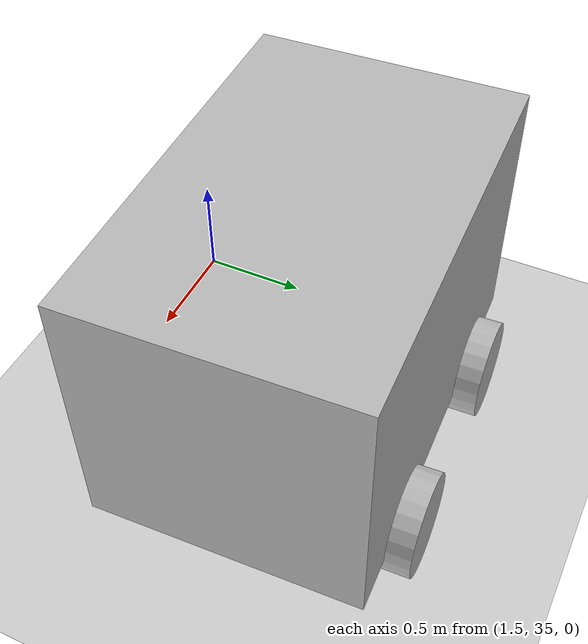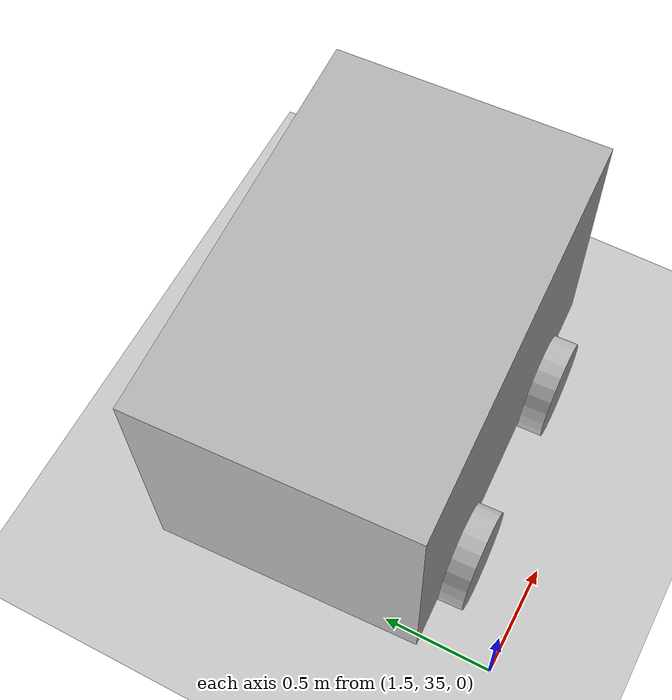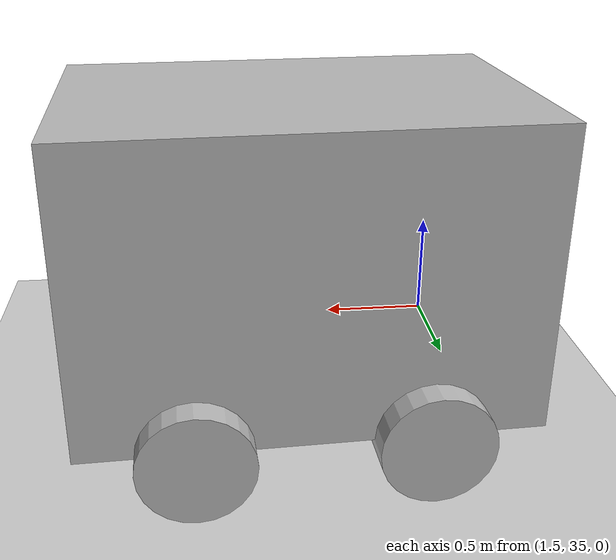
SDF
<sdf version="1.7">
 <world name="rover_world">
  <model name="ground_plane">
   <static>1</static>
   <link name="link">
    <collision name="collision">
     <geometry><plane><normal>0 0 1</normal><size>100 100</size></plane></geometry>
     <surface>
      <contact><collide_bitmask>65535</collide_bitmask></contact>
      <friction><ode><mu>100</mu><mu2>50</mu2></ode></friction>
     </surface>
    </collision>
    <visual name="visual">
     <cast_shadows>0</cast_shadows>
     <geometry><plane><normal>0 0 1</normal><size>100 100</size></plane></geometry>
     <material>
      <script><uri>file://media/materials/scripts/gazebo.material</uri><name>Gazebo/Grey</name></script>
     </material>
    </visual>
   </link>
  </model>
  <model name="robot_5">
   <link name="base_link">
    <inertial>
     <mass>5</mass>
     <inertia><ixx>1.2</ixx><ixy>0</ixy><ixz>0</ixz><iyy>1.95</iyy><iyz>0</iyz><izz>1.95</izz></inertia>
    </inertial>
    <collision name="base_link_collision"><geometry><box><size>1.8 1.2 1.2</size></box></geometry></collision>
    <visual name="base_link_visual"><geometry><box><size>1.8 1.2 1.2</size></box></geometry></visual>
   </link>
   <joint name="lb_wheel_joint" type="revolute">
    <pose relative_to="base_link">-0.45 0.6 -0.6 -1.5708 0 0</pose>
    <parent>base_link</parent>
    <child>lb_wheel</child>
    <axis>
     <xyz>0 0 1</xyz>
     <limit><lower>-1e+16</lower><upper>1e+16</upper></limit>
     <dynamics><spring_reference>0</spring_reference><spring_stiffness>0</spring_stiffness></dynamics>
    </axis>
   </joint>
   <link name="lb_wheel">
    <pose relative_to="lb_wheel_joint">0 0 0 0 -0 0</pose>
    <inertial>
     <mass>0.25</mass>
     <inertia>
      <ixx>0.0041724</ixx>
      <ixy>0</ixy>
      <ixz>0</ixz>
      <iyy>0.0041724</iyy>
      <iyz>0</iyz>
      <izz>0.00632813</izz>
     </inertia>
    </inertial>
    <collision name="lb_wheel_collision">
     <geometry><cylinder><length>0.22</length><radius>0.225</radius></cylinder></geometry>
    </collision>
    <visual name="lb_wheel_visual">
     <geometry><cylinder><length>0.22</length><radius>0.225</radius></cylinder></geometry>
    </visual>
   </link>
   <joint name="lf_wheel_joint" type="revolute">
    <pose relative_to="base_link">0.45 0.6 -0.6 -1.5708 0 0</pose>
    <parent>base_link</parent>
    <child>lf_wheel</child>
    <axis>
     <xyz>0 0 1</xyz>
     <limit><lower>-1e+16</lower><upper>1e+16</upper></limit>
     <dynamics><spring_reference>0</spring_reference><spring_stiffness>0</spring_stiffness></dynamics>
    </axis>
   </joint>
   <link name="lf_wheel">
    <pose relative_to="lf_wheel_joint">0 0 0 0 -0 0</pose>
    <inertial>
     <mass>0.25</mass>
     <inertia>
      <ixx>0.0041724</ixx>
      <ixy>0</ixy>
      <ixz>0</ixz>
      <iyy>0.0041724</iyy>
      <iyz>0</iyz>
      <izz>0.00632813</izz>
     </inertia>
    </inertial>
    <collision name="lf_wheel_collision">
     <geometry><cylinder><length>0.22</length><radius>0.225</radius></cylinder></geometry>
    </collision>
    <visual name="lf_wheel_visual">
     <geometry><cylinder><length>0.22</length><radius>0.225</radius></cylinder></geometry>
    </visual>
   </link>
   <joint name="rb_wheel_joint" type="revolute">
    <pose relative_to="base_link">-0.45 -0.6 -0.6 1.5708 -0 0</pose>
    <parent>base_link</parent>
    <child>rb_wheel</child>
    <axis>
     <xyz>0 0 -1</xyz>
     <limit><lower>-1e+16</lower><upper>1e+16</upper></limit>
     <dynamics><spring_reference>0</spring_reference><spring_stiffness>0</spring_stiffness></dynamics>
    </axis>
   </joint>
   <link name="rb_wheel">
    <pose relative_to="rb_wheel_joint">0 0 0 0 -0 0</pose>
    <inertial>
     <mass>0.25</mass>
     <inertia>
      <ixx>0.0041724</ixx>
      <ixy>0</ixy>
      <ixz>0</ixz>
      <iyy>0.0041724</iyy>
      <iyz>0</iyz>
      <izz>0.00632813</izz>
     </inertia>
    </inertial>
    <collision name="rb_wheel_collision">
     <geometry><cylinder><length>0.22</length><radius>0.225</radius></cylinder></geometry>
    </collision>
    <visual name="rb_wheel_visual">
     <geometry><cylinder><length>0.22</length><radius>0.225</radius></cylinder></geometry>
    </visual>
   </link>
   <joint name="rf_wheel_joint" type="revolute">
    <pose relative_to="base_link">0.45 -0.6 -0.6 1.5708 -0 0</pose>
    <parent>base_link</parent>
    <child>rf_wheel</child>
    <axis>
     <xyz>0 0 -1</xyz>
     <limit><lower>-1e+16</lower><upper>1e+16</upper></limit>
     <dynamics><spring_reference>0</spring_reference><spring_stiffness>0</spring_stiffness></dynamics>
    </axis>
   </joint>
   <link name="rf_wheel">
    <pose relative_to="rf_wheel_joint">0 0 0 0 -0 0</pose>
    <inertial>
     <mass>0.25</mass>
     <inertia>
      <ixx>0.0041724</ixx>
      <ixy>0</ixy>
      <ixz>0</ixz>
      <iyy>0.0041724</iyy>
      <iyz>0</iyz>
      <izz>0.00632813</izz>
     </inertia>
    </inertial>
    <collision name="rf_wheel_collision">
     <geometry><cylinder><length>0.22</length><radius>0.225</radius></cylinder></geometry>
    </collision>
    <visual name="rf_wheel_visual">
     <geometry><cylinder><length>0.22</length><radius>0.225</radius></cylinder></geometry>
    </visual>
   </link>
   <static>0</static>
   <plugin name="gazebo_control" filename="libgazebo_ros_diff_drive.so">
    <num_wheel_pairs>2</num_wheel_pairs>
    <ros><namespace>robot5</namespace></ros>
    <left_joint>lb_wheel_joint</left_joint>
    <right_joint>rb_wheel_joint</right_joint>
    <left_joint>lf_wheel_joint</left_joint>
    <right_joint>rf_wheel_joint</right_joint>
    <wheel_separation>1.2</wheel_separation>
    <wheel_diameter>0.45</wheel_diameter>
    <command_topic>cmd_vel</command_topic>
    <update_rate>50</update_rate>
    <max_wheel_torque>100</max_wheel_torque>
    <max_wheel_acceleration>5.0</max_wheel_acceleration>
    <odometry_frame>odom</odometry_frame>
    <robot_base_frame>base_link</robot_base_frame>
    <publish_odom>1</publish_odom>
    <publish_odom_tf>1</publish_odom_tf>
    <publish_wheel_tf>1</publish_wheel_tf>
   </plugin>
   <pose>2.27444 35.941 0.826013 -1e-06 2e-06 0.040828</pose>
  </model>
 </world>
</sdf>
